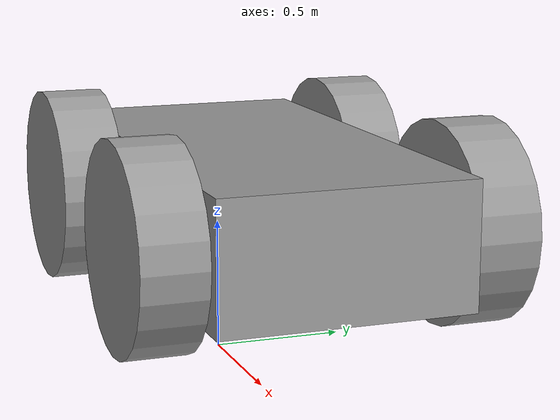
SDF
<?xml version='1.0'?>
<sdf version='1.7'>
  <model name='honours_project_bot'>
    <link name='chassis'>
      <inertial>
        <mass>1</mass>
        <inertia>
          <ixx>0.166667</ixx>
          <ixy>0</ixy>
          <ixz>0</ixz>
          <iyy>0.166667</iyy>
          <iyz>0</iyz>
          <izz>0.166667</izz>
        </inertia>
        <pose>0 0 0 0 -0 0</pose>
      </inertial>
      <pose>-0.30089 0.265415 0.5 0 -0 0</pose>
      <gravity>1</gravity>
      <self_collide>0</self_collide>
      <kinematic>0</kinematic>
      <enable_wind>0</enable_wind>
      <visual name='visual'>
        <pose>0 0 0 0 -0 0</pose>
        <geometry>
          <box>
            <size>2 1 0.5</size>
          </box>
        </geometry>
        <material>
          <lighting>1</lighting>
          <script>
            <uri>file://media/materials/scripts/gazebo.material</uri>
            <name>Gazebo/Grey</name>
          </script>
          <shader type='pixel'>
            <normal_map>__default__</normal_map>
          </shader>
          <ambient>0.3 0.3 0.3 1</ambient>
          <diffuse>0.7 0.7 0.7 1</diffuse>
          <specular>0.01 0.01 0.01 1</specular>
          <emissive>0 0 0 1</emissive>
        </material>
        <transparency>0</transparency>
        <cast_shadows>1</cast_shadows>
      </visual>
      <collision name='collision'>
        <laser_retro>0</laser_retro>
        <max_contacts>10</max_contacts>
        <pose>0 0 0 0 -0 0</pose>
        <geometry>
          <box>
            <size>2 1 0.5</size>
          </box>
        </geometry>
        <surface>
          <friction>
            <ode>
              <mu>1</mu>
              <mu2>1</mu2>
              <fdir1>0 0 0</fdir1>
              <slip1>0</slip1>
              <slip2>0</slip2>
            </ode>
            <torsional>
              <coefficient>1</coefficient>
              <patch_radius>0</patch_radius>
              <surface_radius>0</surface_radius>
              <use_patch_radius>1</use_patch_radius>
              <ode>
                <slip>0</slip>
              </ode>
            </torsional>
          </friction>
          <bounce>
            <restitution_coefficient>0</restitution_coefficient>
            <threshold>1e+06</threshold>
          </bounce>
          <contact>
            <collide_without_contact>0</collide_without_contact>
            <collide_without_contact_bitmask>1</collide_without_contact_bitmask>
            <collide_bitmask>1</collide_bitmask>
            <ode>
              <soft_cfm>0</soft_cfm>
              <soft_erp>0.2</soft_erp>
              <kp>1e+13</kp>
              <kd>1</kd>
              <max_vel>0.01</max_vel>
              <min_depth>0</min_depth>
            </ode>
            <bullet>
              <split_impulse>1</split_impulse>
              <split_impulse_penetration_threshold>-0.01</split_impulse_penetration_threshold>
              <soft_cfm>0</soft_cfm>
              <soft_erp>0.2</soft_erp>
              <kp>1e+13</kp>
              <kd>1</kd>
            </bullet>
          </contact>
        </surface>
      </collision>
    </link>
    <link name='fr_wheel'>
      <inertial>
        <mass>1</mass>
        <inertia>
          <ixx>0.145833</ixx>
          <ixy>0</ixy>
          <ixz>0</ixz>
          <iyy>0.145833</iyy>
          <iyz>0</iyz>
          <izz>0.125</izz>
        </inertia>
        <pose>0 0 0 0 -0 0</pose>
      </inertial>
      <pose>0.299104 -0.374585 0.499997 0 -0 0</pose>
      <gravity>1</gravity>
      <self_collide>0</self_collide>
      <kinematic>0</kinematic>
      <enable_wind>0</enable_wind>
      <visual name='visual'>
        <pose>0 0 0 1.5707 -0 0</pose>
        <geometry>
          <cylinder>
            <radius>0.4</radius>
            <length>0.25</length>
          </cylinder>
        </geometry>
        <material>
          <lighting>1</lighting>
          <script>
            <uri>file://media/materials/scripts/gazebo.material</uri>
            <name>Gazebo/Grey</name>
          </script>
          <shader type='pixel'>
            <normal_map>__default__</normal_map>
          </shader>
          <ambient>0.3 0.3 0.3 1</ambient>
          <diffuse>0.7 0.7 0.7 1</diffuse>
          <specular>0.01 0.01 0.01 1</specular>
          <emissive>0 0 0 1</emissive>
        </material>
        <transparency>0</transparency>
        <cast_shadows>1</cast_shadows>
      </visual>
      <collision name='collision'>
        <laser_retro>0</laser_retro>
        <max_contacts>10</max_contacts>
        <pose>0 0 0 1.5707 -0 0</pose>
        <geometry>
          <cylinder>
            <radius>0.4</radius>
            <length>0.25</length>
          </cylinder>
        </geometry>
        <surface>
          <friction>
            <ode>
              <mu>1</mu>
              <mu2>1</mu2>
              <fdir1>0 0 0</fdir1>
              <slip1>0</slip1>
              <slip2>0</slip2>
            </ode>
            <torsional>
              <coefficient>1</coefficient>
              <patch_radius>0</patch_radius>
              <surface_radius>0</surface_radius>
              <use_patch_radius>1</use_patch_radius>
              <ode>
                <slip>0</slip>
              </ode>
            </torsional>
          </friction>
          <bounce>
            <restitution_coefficient>0</restitution_coefficient>
            <threshold>1e+06</threshold>
          </bounce>
          <contact>
            <collide_without_contact>0</collide_without_contact>
            <collide_without_contact_bitmask>1</collide_without_contact_bitmask>
            <collide_bitmask>1</collide_bitmask>
            <ode>
              <soft_cfm>0</soft_cfm>
              <soft_erp>0.2</soft_erp>
              <kp>1e+13</kp>
              <kd>1</kd>
              <max_vel>0.01</max_vel>
              <min_depth>0</min_depth>
            </ode>
            <bullet>
              <split_impulse>1</split_impulse>
              <split_impulse_penetration_threshold>-0.01</split_impulse_penetration_threshold>
              <soft_cfm>0</soft_cfm>
              <soft_erp>0.2</soft_erp>
              <kp>1e+13</kp>
              <kd>1</kd>
            </bullet>
          </contact>
        </surface>
      </collision>
    </link>
    <link name='fl_wheel'>
      <inertial>
        <mass>1</mass>
        <inertia>
          <ixx>0.145833</ixx>
          <ixy>0</ixy>
          <ixz>0</ixz>
          <iyy>0.145833</iyy>
          <iyz>0</iyz>
          <izz>0.125</izz>
        </inertia>
        <pose>0 0 0 0 -0 0</pose>
      </inertial>
      <pose>0.29912 0.890454 0.499989 0 3.8e-05 0</pose>
      <gravity>1</gravity>
      <self_collide>0</self_collide>
      <kinematic>0</kinematic>
      <enable_wind>0</enable_wind>
      <visual name='visual'>
        <pose>0 0 0 1.5707 -0 0</pose>
        <geometry>
          <cylinder>
            <radius>0.4</radius>
            <length>0.25</length>
          </cylinder>
        </geometry>
        <material>
          <lighting>1</lighting>
          <script>
            <uri>file://media/materials/scripts/gazebo.material</uri>
            <name>Gazebo/Grey</name>
          </script>
          <shader type='pixel'>
            <normal_map>__default__</normal_map>
          </shader>
          <ambient>0.3 0.3 0.3 1</ambient>
          <diffuse>0.7 0.7 0.7 1</diffuse>
          <specular>0.01 0.01 0.01 1</specular>
          <emissive>0 0 0 1</emissive>
        </material>
        <transparency>0</transparency>
        <cast_shadows>1</cast_shadows>
      </visual>
      <collision name='collision'>
        <laser_retro>0</laser_retro>
        <max_contacts>10</max_contacts>
        <pose>0 0 0 1.5707 -0 0</pose>
        <geometry>
          <cylinder>
            <radius>0.4</radius>
            <length>0.25</length>
          </cylinder>
        </geometry>
        <surface>
          <friction>
            <ode>
              <mu>1</mu>
              <mu2>1</mu2>
              <fdir1>0 0 0</fdir1>
              <slip1>0</slip1>
              <slip2>0</slip2>
            </ode>
            <torsional>
              <coefficient>1</coefficient>
              <patch_radius>0</patch_radius>
              <surface_radius>0</surface_radius>
              <use_patch_radius>1</use_patch_radius>
              <ode>
                <slip>0</slip>
              </ode>
            </torsional>
          </friction>
          <bounce>
            <restitution_coefficient>0</restitution_coefficient>
            <threshold>1e+06</threshold>
          </bounce>
          <contact>
            <collide_without_contact>0</collide_without_contact>
            <collide_without_contact_bitmask>1</collide_without_contact_bitmask>
            <collide_bitmask>1</collide_bitmask>
            <ode>
              <soft_cfm>0</soft_cfm>
              <soft_erp>0.2</soft_erp>
              <kp>1e+13</kp>
              <kd>1</kd>
              <max_vel>0.01</max_vel>
              <min_depth>0</min_depth>
            </ode>
            <bullet>
              <split_impulse>1</split_impulse>
              <split_impulse_penetration_threshold>-0.01</split_impulse_penetration_threshold>
              <soft_cfm>0</soft_cfm>
              <soft_erp>0.2</soft_erp>
              <kp>1e+13</kp>
              <kd>1</kd>
            </bullet>
          </contact>
        </surface>
      </collision>
    </link>
    <link name='br_wheel'>
      <inertial>
        <mass>1</mass>
        <inertia>
          <ixx>0.145833</ixx>
          <ixy>0</ixy>
          <ixz>0</ixz>
          <iyy>0.145833</iyy>
          <iyz>0</iyz>
          <izz>0.125</izz>
        </inertia>
        <pose>0 0 0 0 -0 0</pose>
      </inertial>
      <pose>-0.9009 -0.359624 0.500034 0 3.8e-05 0</pose>
      <gravity>1</gravity>
      <self_collide>0</self_collide>
      <kinematic>0</kinematic>
      <enable_wind>0</enable_wind>
      <visual name='visual'>
        <pose>0 0 0 1.5707 -0 0</pose>
        <geometry>
          <cylinder>
            <radius>0.4</radius>
            <length>0.25</length>
          </cylinder>
        </geometry>
        <material>
          <lighting>1</lighting>
          <script>
            <uri>file://media/materials/scripts/gazebo.material</uri>
            <name>Gazebo/Grey</name>
          </script>
          <shader type='pixel'>
            <normal_map>__default__</normal_map>
          </shader>
          <ambient>0.3 0.3 0.3 1</ambient>
          <diffuse>0.7 0.7 0.7 1</diffuse>
          <specular>0.01 0.01 0.01 1</specular>
          <emissive>0 0 0 1</emissive>
        </material>
        <transparency>0</transparency>
        <cast_shadows>1</cast_shadows>
      </visual>
      <collision name='collision'>
        <laser_retro>0</laser_retro>
        <max_contacts>10</max_contacts>
        <pose>0 0 0 1.5707 -0 0</pose>
        <geometry>
          <cylinder>
            <radius>0.4</radius>
            <length>0.25</length>
          </cylinder>
        </geometry>
        <surface>
          <friction>
            <ode>
              <mu>1</mu>
              <mu2>1</mu2>
              <fdir1>0 0 0</fdir1>
              <slip1>0</slip1>
              <slip2>0</slip2>
            </ode>
            <torsional>
              <coefficient>1</coefficient>
              <patch_radius>0</patch_radius>
              <surface_radius>0</surface_radius>
              <use_patch_radius>1</use_patch_radius>
              <ode>
                <slip>0</slip>
              </ode>
            </torsional>
          </friction>
          <bounce>
            <restitution_coefficient>0</restitution_coefficient>
            <threshold>1e+06</threshold>
          </bounce>
          <contact>
            <collide_without_contact>0</collide_without_contact>
            <collide_without_contact_bitmask>1</collide_without_contact_bitmask>
            <collide_bitmask>1</collide_bitmask>
            <ode>
              <soft_cfm>0</soft_cfm>
              <soft_erp>0.2</soft_erp>
              <kp>1e+13</kp>
              <kd>1</kd>
              <max_vel>0.01</max_vel>
              <min_depth>0</min_depth>
            </ode>
            <bullet>
              <split_impulse>1</split_impulse>
              <split_impulse_penetration_threshold>-0.01</split_impulse_penetration_threshold>
              <soft_cfm>0</soft_cfm>
              <soft_erp>0.2</soft_erp>
              <kp>1e+13</kp>
              <kd>1</kd>
            </bullet>
          </contact>
        </surface>
      </collision>
    </link>
    <link name='bl_wheel'>
      <inertial>
        <mass>1</mass>
        <inertia>
          <ixx>0.145833</ixx>
          <ixy>0</ixy>
          <ixz>0</ixz>
          <iyy>0.145833</iyy>
          <iyz>0</iyz>
          <izz>0.125</izz>
        </inertia>
        <pose>0 0 0 0 -0 0</pose>
      </inertial>
      <pose>-0.9009 0.890454 0.500034 0 3.8e-05 0</pose>
      <gravity>1</gravity>
      <self_collide>0</self_collide>
      <kinematic>0</kinematic>
      <enable_wind>0</enable_wind>
      <visual name='visual'>
        <pose>0 0 0 1.5707 -0 0</pose>
        <geometry>
          <cylinder>
            <radius>0.4</radius>
            <length>0.25</length>
          </cylinder>
        </geometry>
        <material>
          <lighting>1</lighting>
          <script>
            <uri>file://media/materials/scripts/gazebo.material</uri>
            <name>Gazebo/Grey</name>
          </script>
          <shader type='pixel'>
            <normal_map>__default__</normal_map>
          </shader>
          <ambient>0.3 0.3 0.3 1</ambient>
          <diffuse>0.7 0.7 0.7 1</diffuse>
          <specular>0.01 0.01 0.01 1</specular>
          <emissive>0 0 0 1</emissive>
        </material>
        <transparency>0</transparency>
        <cast_shadows>1</cast_shadows>
      </visual>
      <collision name='collision'>
        <laser_retro>0</laser_retro>
        <max_contacts>10</max_contacts>
        <pose>0 0 0 1.5707 -0 0</pose>
        <geometry>
          <cylinder>
            <radius>0.4</radius>
            <length>0.25</length>
          </cylinder>
        </geometry>
        <surface>
          <friction>
            <ode>
              <mu>1</mu>
              <mu2>1</mu2>
              <fdir1>0 0 0</fdir1>
              <slip1>0</slip1>
              <slip2>0</slip2>
            </ode>
            <torsional>
              <coefficient>1</coefficient>
              <patch_radius>0</patch_radius>
              <surface_radius>0</surface_radius>
              <use_patch_radius>1</use_patch_radius>
              <ode>
                <slip>0</slip>
              </ode>
            </torsional>
          </friction>
          <bounce>
            <restitution_coefficient>0</restitution_coefficient>
            <threshold>1e+06</threshold>
          </bounce>
          <contact>
            <collide_without_contact>0</collide_without_contact>
            <collide_without_contact_bitmask>1</collide_without_contact_bitmask>
            <collide_bitmask>1</collide_bitmask>
            <ode>
              <soft_cfm>0</soft_cfm>
              <soft_erp>0.2</soft_erp>
              <kp>1e+13</kp>
              <kd>1</kd>
              <max_vel>0.01</max_vel>
              <min_depth>0</min_depth>
            </ode>
            <bullet>
              <split_impulse>1</split_impulse>
              <split_impulse_penetration_threshold>-0.01</split_impulse_penetration_threshold>
              <soft_cfm>0</soft_cfm>
              <soft_erp>0.2</soft_erp>
              <kp>1e+13</kp>
              <kd>1</kd>
            </bullet>
          </contact>
        </surface>
      </collision>
    </link>
    <joint name='fr_wheel_joint' type='revolute'>
      <parent>chassis</parent>
      <child>fr_wheel</child>
      <pose>0 0 0 0 -0 0</pose>
      <axis>
        <xyz>0 1 0</xyz>
        <limit>
          <lower>-1.79769e+308</lower>
          <upper>1.79769e+308</upper>
          <effort>-1</effort>
          <velocity>-1</velocity>
        </limit>
        <dynamics>
          <spring_reference>0</spring_reference>
          <spring_stiffness>0</spring_stiffness>
          <damping>0</damping>
        </dynamics>
      </axis>
      <physics>
        <ode>
          <limit>
            <cfm>0</cfm>
            <erp>0.2</erp>
          </limit>
          <suspension>
            <cfm>0</cfm>
            <erp>0.2</erp>
          </suspension>
        </ode>
      </physics>
    </joint>
    <joint name='br_wheel_joint' type='revolute'>
      <parent>chassis</parent>
      <child>br_wheel</child>
      <pose>0 0 0 0 -0 0</pose>
      <axis>
        <xyz>0 1 0</xyz>
        <limit>
          <lower>-1.79769e+308</lower>
          <upper>1.79769e+308</upper>
          <effort>-1</effort>
          <velocity>-1</velocity>
        </limit>
        <dynamics>
          <spring_reference>0</spring_reference>
          <spring_stiffness>0</spring_stiffness>
          <damping>0</damping>
        </dynamics>
      </axis>
      <physics>
        <ode>
          <limit>
            <cfm>0</cfm>
            <erp>0.2</erp>
          </limit>
          <suspension>
            <cfm>0</cfm>
            <erp>0.2</erp>
          </suspension>
        </ode>
      </physics>
    </joint>
    <joint name='fl_wheel_joint' type='revolute'>
      <parent>chassis</parent>
      <child>fl_wheel</child>
      <pose>0 0 0 0 -0 0</pose>
      <axis>
        <xyz>0 1 0</xyz>
        <limit>
          <lower>-1.79769e+308</lower>
          <upper>1.79769e+308</upper>
          <effort>-1</effort>
          <velocity>-1</velocity>
        </limit>
        <dynamics>
          <spring_reference>0</spring_reference>
          <spring_stiffness>0</spring_stiffness>
          <damping>0</damping>
        </dynamics>
      </axis>
      <physics>
        <ode>
          <limit>
            <cfm>0</cfm>
            <erp>0.2</erp>
          </limit>
          <suspension>
            <cfm>0</cfm>
            <erp>0.2</erp>
          </suspension>
        </ode>
      </physics>
    </joint>
    <joint name='bl_wheel_joint' type='revolute'>
      <parent>chassis</parent>
      <child>bl_wheel</child>
      <pose>0 0 0 0 -0 0</pose>
      <axis>
        <xyz>0 1 0</xyz>
        <limit>
          <lower>-1.79769e+308</lower>
          <upper>1.79769e+308</upper>
          <effort>-1</effort>
          <velocity>-1</velocity>
        </limit>
        <dynamics>
          <spring_reference>0</spring_reference>
          <spring_stiffness>0</spring_stiffness>
          <damping>0</damping>
        </dynamics>
      </axis>
      <physics>
        <ode>
          <limit>
            <cfm>0</cfm>
            <erp>0.2</erp>
          </limit>
          <suspension>
            <cfm>0</cfm>
            <erp>0.2</erp>
          </suspension>
        </ode>
      </physics>
    </joint>
    <static>0</static>
    <allow_auto_disable>1</allow_auto_disable>
  </model>
</sdf>
